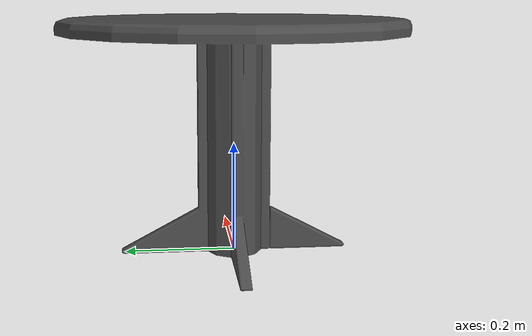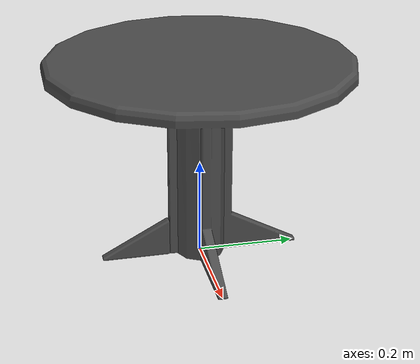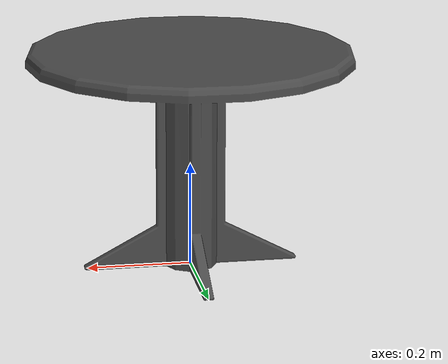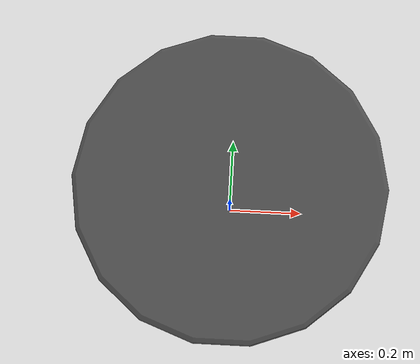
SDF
<?xml version='1.0'?>
<sdf version="1.5">
  <model name="minicoffeetable"> <!-- Very important to change-->
    <static>false</static>
    <pose>0 0 0 0 0 0</pose> <!-- Translation: X Y Z and Rotation: Roll Pitch Yaw (In Radian)-->
    <link name="body">

    <inertial>
    <mass>45</mass>
      <inertia>
          <ixx>1</ixx>
          <ixy>0</ixy>
          <ixz>0</ixz>
          <iyy>1</iyy>
          <iyz>0</iyz>
          <izz>1</izz>
      </inertia>
    </inertial>

       <collision name="collision"> <!-- You can use mesh like below -->
        <geometry>
          <mesh><!-- Very important to change-->
             <uri>/home/sorox23/robotic_ws/master_thesis_ws/src/property_based_tester/environment/models/minicoffeetable/meshes/minicoffeetable.stl</uri>
             <scale>0.001 0.001 0.001</scale>
          </mesh>
        </geometry>
      </collision>

      <visual name="visual">
        <geometry>
          <mesh><!-- Very important to change-->
             <uri>/home/sorox23/robotic_ws/master_thesis_ws/src/property_based_tester/environment/models/minicoffeetable/meshes/minicoffeetable.stl</uri>
             <scale>0.001 0.001 0.001</scale>
          </mesh>
        </geometry>

        <material>
          <script> <!-- Very important to change-->
             <uri>/home/sorox23/robotic_ws/master_thesis_ws/src/property_based_tester/environment/models/minicoffeetable/materials/scripts</uri>
             <uri>/home/sorox23/robotic_ws/master_thesis_ws/src/property_based_tester/environment/models/minicoffeetable/materials/textures</uri>
             <name>material Gazebo/DarkGrey</name>
          </script>
        </material>
      </visual>

    </link>
  </model>
</sdf>
